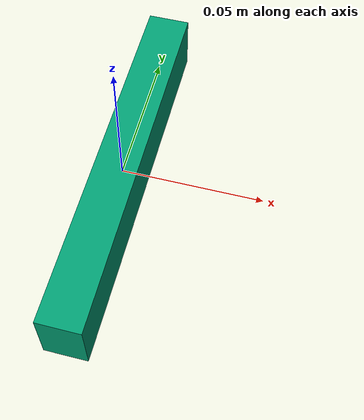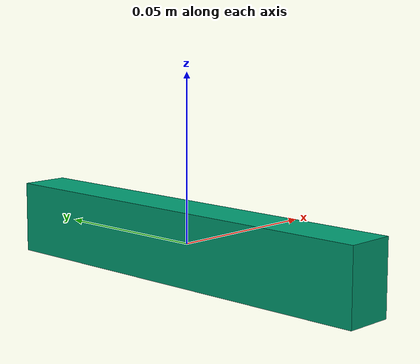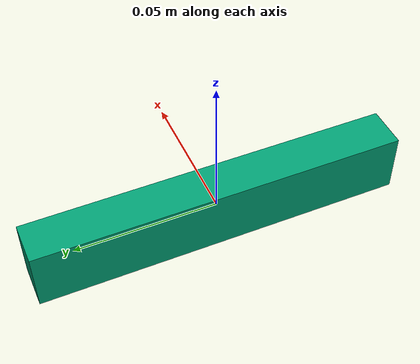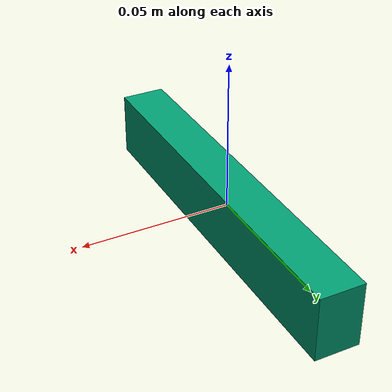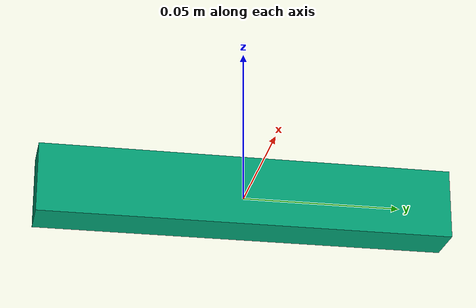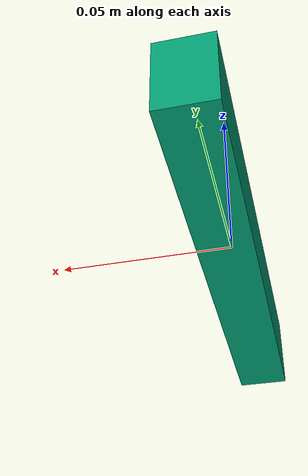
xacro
<?xml version="1.0" ?>
<robot name="ambula_bot" xmlns:xacro="http://ros.org/wiki/xacro">
  <xacro:include filename="$(find ambula_description)/urdf/ambula_oa/properties.urdf.xacro" />
  <xacro:include filename="$(find ambula_description)/urdf/ambula_oa/robot/base.urdf.xacro" />
  <xacro:include filename="$(find ambula_description)/urdf/ambula_oa/plugin/gazebo_position.urdf.xacro" />

  <!-- Robot -->
  <xacro:base length="${base_length}" width="${base_width}" height="${base_height}" mass="${base_mass}"/>

  <!-- Sensor -->
  <xacro:include filename="$(find ambula_description)/urdf/ambula_oa/sensor/depth_camera.urdf.xacro" />
  <xacro:include filename="$(find ambula_description)/urdf/ambula_oa/sensor/imu.urdf.xacro" />

</robot>

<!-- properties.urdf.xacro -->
<robot xmlns:xacro="http://www.ros.org/wiki/xacro">

    <!-- Properties -->
    <xacro:property name="base_length" value="0.01" />
    <xacro:property name="base_width" value="0.01" />
    <xacro:property name="base_height" value="0.01" />
    <xacro:property name="base_mass" value="1.5" />

</robot>

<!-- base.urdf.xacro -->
<robot xmlns:xacro="http://www.ros.org/wiki/xacro">
    <xacro:macro name="base" params="length width height mass">
        <link name="world" />

        <link name="base_link">
            <visual>
                <origin xyz="0 0 ${height/2}" rpy="0 0 0"/>
                <geometry>
                    <box size="${length} ${width} ${height}"/>
                </geometry>
                <material name="orange">
                    <color rgba="1.0 0.3 0.0 1.0"/>
                </material>
            </visual>

            <collision>
                <origin xyz="0 0 ${height/2}" rpy="0 0 0"/>
                <geometry>
                    <box size="${length} ${width} ${height}"/>
                </geometry>
            </collision>

            <inertial>
                <origin xyz="0 0 ${height/2}" rpy="0 0 0"/>
                <mass value="${mass}"/>
                <inertia ixx="${(1/12) * mass * ((width  * width)  + (height * height))}" ixy="0.0" ixz="0.0" iyy="${(1/12) * mass * ((length * length) + (height * height))}" iyz="0.0" izz="${(1/12) * mass * ((length * length) + (width  * width))}"/>
            </inertial>
        </link>

        <gazebo reference="base_link">
            <visual>
                <material>
                    <ambient>0.8392 0.6314 0.0 1.0</ambient>
                    <diffuse>0.8392 0.6314 0.0 1.0</diffuse>
                    <specular>0.99 0.99 0.99 1.0</specular>
                    <emissive>0.0 0.0 0.0 0.0</emissive>
                </material>
            </visual>
        </gazebo>

        <joint name="world_to_base" type="prismatic">
            <origin rpy="0 0 0" xyz="0 0 0" />
            <axis xyz="0 1 0" />
            <parent link="world" />
            <child link="base_link" />
            <limit effort="100" lower="-2.5" upper="2.5" velocity="10" />
            <dynamics damping="10.0" friction="5.0" />
        </joint>

    </xacro:macro>

</robot>

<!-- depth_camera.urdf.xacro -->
<robot xmlns:xacro="http://www.ros.org/wiki/xacro">

    <link name="camera_link">
        <visual>
            <origin xyz="0 0 0" rpy="0 0 0"/>
            <geometry>
                <box size="0.015 0.130 0.022"/>
            </geometry>
        </visual>

        <collision>
            <origin xyz="0 0 0" rpy="0 0 0"/>
            <geometry>
                <box size="0.015 0.130 0.022"/>
            </geometry>
        </collision>

        <inertial>
            <origin xyz="0 0 0" rpy="0 0 0"/>
            <mass value="0.035"/>
            <inertia ixx="0.001" ixy="0" ixz="0" iyy="0.001" iyz="0" izz="0.001" />
        </inertial>
    </link>

    <joint name="slider_to_camera" type="prismatic">
        <axis xyz="0 0 1" />
        <origin xyz="0.0 0.0 0.0" />
        <parent link="base_link" />
        <child link="camera_link" />
        <limit effort="100" lower="0.0" upper="2.5" velocity="10" />
        <dynamics damping="0.2" />
    </joint>

    <gazebo reference="camera_link">
        <sensor name="depth_camera" type="rgbd_camera">
            <always_on>true</always_on>
            <visualize>true</visualize>
            <update_rate>15</update_rate>
            <topic>depth_camera</topic>
            <gz_frame_id>camera_link</gz_frame_id>
            <camera>
                <horizontal_fov>1.047198</horizontal_fov>
                <image>
                    <width>640</width>
                    <height>480</height>
                </image>
                <clip>
                    <near>0.05</near>
                    <far>3.0</far>
                </clip>
                <distortion>                 <!-- Brown–Conrady -->
                    <k1>0.0</k1>
                    <k2>0.0</k2>
                    <k3>0.0</k3>
                    <p1>0.0</p1>
                    <p2>0.0</p2>
                    <center>0.5 0.5</center>  <!-- principal point (normalized) -->
                </distortion>
            </camera>
        </sensor>
    </gazebo>

</robot>

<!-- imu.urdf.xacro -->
<robot xmlns:xacro="http://www.ros.org/wiki/xacro">

    <link name="imu_link">
        <visual>
            <origin xyz="0 0 0" rpy="0 0 0"/>
            <geometry>
                <box size="0.01 0.01 0.01"/>
            </geometry>
        </visual>

        <collision>
            <origin xyz="0 0 0" rpy="0 0 0"/>
            <geometry>
                <box size="0.01 0.01 0.01"/>
            </geometry>
        </collision>

        <inertial>
            <origin xyz="0 0 0" rpy="0 0 0"/>
            <mass value="0.035"/>
            <inertia ixx="0.001" ixy="0" ixz="0" iyy="0.001" iyz="0" izz="0.001" />
        </inertial>
    </link>

    <joint name="imu_to_base_link" type="fixed">
        <parent link="camera_link"/>
        <child link="imu_link"/>
        <origin xyz="0 0 0" rpy="0 0 0"/>
    </joint>

    <gazebo reference="imu_link">
        <sensor name="imu_sensor" type="imu">
            <pose relative_to="base_link">0 0 0 0 0 0</pose>
            <always_on>1</always_on>
            <update_rate>1000.0</update_rate>
            <topic>imu</topic>
            <gz_frame_id>imu_link</gz_frame_id>
        </sensor>
            <sensor name="navsat" type="navsat">
            <always_on>1</always_on>
            <update_rate>1</update_rate>
            <topic>navsat</topic>
            <gz_frame_id>imu_link</gz_frame_id>
        </sensor>
    </gazebo>

</robot>
